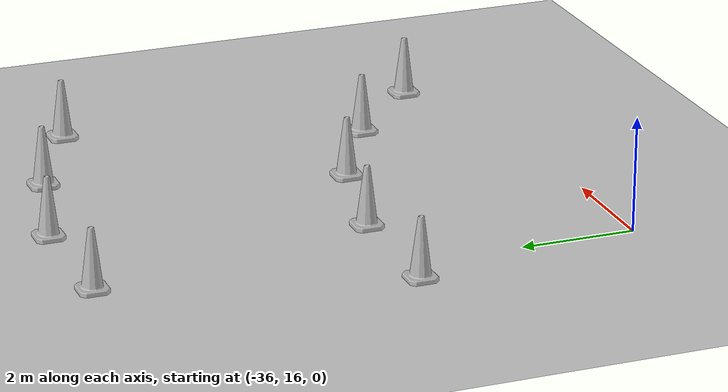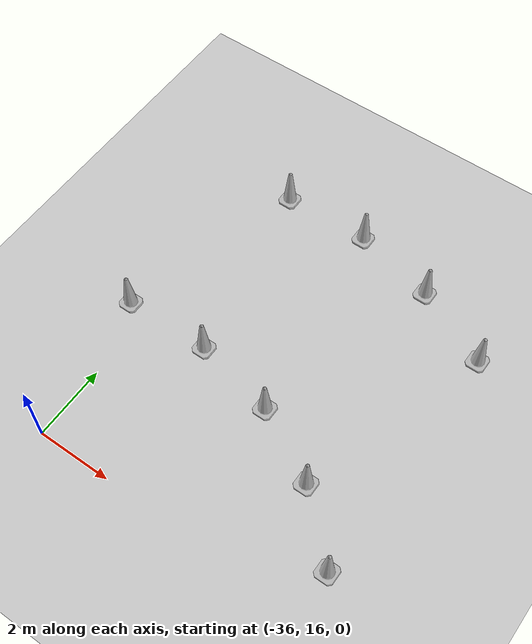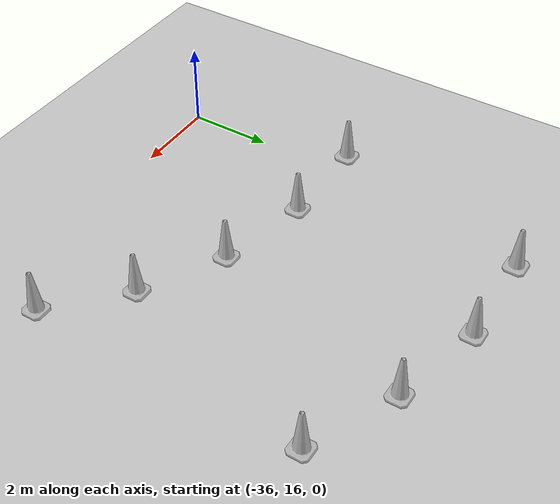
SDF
<sdf version="1.7">
 <world name="default">
  <model name="ground_plane">
   <static>1</static>
   <link name="link">
    <collision name="collision">
     <geometry><plane><normal>0 0 1</normal><size>125 125</size></plane></geometry>
     <surface>
      <contact><collide_bitmask>65535</collide_bitmask></contact>
      <friction><ode><mu>100</mu><mu2>50</mu2></ode></friction>
     </surface>
    </collision>
    <visual name="visual">
     <cast_shadows>0</cast_shadows>
     <geometry><plane><normal>0 0 1</normal><size>125 125</size></plane></geometry>
     <material>
      <script><uri>file://media/materials/scripts/gazebo.material</uri><name>Gazebo/Grey</name></script>
     </material>
    </visual>
   </link>
  </model>
  <model name="Construction Cone 62">
   <link name="link">
    <collision name="collision">
     <geometry>
      <mesh><scale>10 10 10</scale><uri>model://construction_cone/meshes/construction_cone.dae</uri></mesh>
     </geometry>
    </collision>
    <visual name="visual">
     <geometry>
      <mesh><scale>10 10 10</scale><uri>model://construction_cone/meshes/construction_cone.dae</uri></mesh>
     </geometry>
    </visual>
    <inertial>
     <inertia><ixx>1</ixx><ixy>0</ixy><ixz>0</ixz><iyy>1</iyy><iyz>0</iyz><izz>1</izz></inertia>
     <mass>1</mass>
    </inertial>
   </link>
   <pose>-35.19375161880874 25.080855827656052 0 0 0 0</pose>
  </model>
  <model name="Construction Cone 63">
   <link name="link">
    <collision name="collision">
     <geometry>
      <mesh><scale>10 10 10</scale><uri>model://construction_cone/meshes/construction_cone.dae</uri></mesh>
     </geometry>
    </collision>
    <visual name="visual">
     <geometry>
      <mesh><scale>10 10 10</scale><uri>model://construction_cone/meshes/construction_cone.dae</uri></mesh>
     </geometry>
    </visual>
    <inertial>
     <inertia><ixx>1</ixx><ixy>0</ixy><ixz>0</ixz><iyy>1</iyy><iyz>0</iyz><izz>1</izz></inertia>
     <mass>1</mass>
    </inertial>
   </link>
   <pose>-32.871751618808744 25.134855827656047 0 0 0 0</pose>
  </model>
  <model name="Construction Cone 65">
   <link name="link">
    <collision name="collision">
     <geometry>
      <mesh><scale>10 10 10</scale><uri>model://construction_cone/meshes/construction_cone.dae</uri></mesh>
     </geometry>
    </collision>
    <visual name="visual">
     <geometry>
      <mesh><scale>10 10 10</scale><uri>model://construction_cone/meshes/construction_cone.dae</uri></mesh>
     </geometry>
    </visual>
    <inertial>
     <inertia><ixx>1</ixx><ixy>0</ixy><ixz>0</ixz><iyy>1</iyy><iyz>0</iyz><izz>1</izz></inertia>
     <mass>1</mass>
    </inertial>
   </link>
   <pose>-30.657751618808742 24.594855827656048 0 0 0 0</pose>
  </model>
  <model name="Construction Cone 70">
   <link name="link">
    <collision name="collision">
     <geometry>
      <mesh><scale>10 10 10</scale><uri>model://construction_cone/meshes/construction_cone.dae</uri></mesh>
     </geometry>
    </collision>
    <visual name="visual">
     <geometry>
      <mesh><scale>10 10 10</scale><uri>model://construction_cone/meshes/construction_cone.dae</uri></mesh>
     </geometry>
    </visual>
    <inertial>
     <inertia><ixx>1</ixx><ixy>0</ixy><ixz>0</ixz><iyy>1</iyy><iyz>0</iyz><izz>1</izz></inertia>
     <mass>1</mass>
    </inertial>
   </link>
   <pose>-28.57875161880874 23.649855827656047 0 0 0 0</pose>
  </model>
  <model name="Construction Cone 84">
   <link name="link">
    <collision name="collision">
     <geometry>
      <mesh><scale>10 10 10</scale><uri>model://construction_cone/meshes/construction_cone.dae</uri></mesh>
     </geometry>
    </collision>
    <visual name="visual">
     <geometry>
      <mesh><scale>10 10 10</scale><uri>model://construction_cone/meshes/construction_cone.dae</uri></mesh>
     </geometry>
    </visual>
    <inertial>
     <inertia><ixx>1</ixx><ixy>0</ixy><ixz>0</ixz><iyy>1</iyy><iyz>0</iyz><izz>1</izz></inertia>
     <mass>1</mass>
    </inertial>
   </link>
   <pose>-36.59775161880874 20.04535582765605 0 0 0 0</pose>
  </model>
  <model name="Construction Cone 85">
   <link name="link">
    <collision name="collision">
     <geometry>
      <mesh><scale>10 10 10</scale><uri>model://construction_cone/meshes/construction_cone.dae</uri></mesh>
     </geometry>
    </collision>
    <visual name="visual">
     <geometry>
      <mesh><scale>10 10 10</scale><uri>model://construction_cone/meshes/construction_cone.dae</uri></mesh>
     </geometry>
    </visual>
    <inertial>
     <inertia><ixx>1</ixx><ixy>0</ixy><ixz>0</ixz><iyy>1</iyy><iyz>0</iyz><izz>1</izz></inertia>
     <mass>1</mass>
    </inertial>
   </link>
   <pose>-34.27575161880874 20.058855827656046 0 0 0 0</pose>
  </model>
  <model name="Construction Cone 88">
   <link name="link">
    <collision name="collision">
     <geometry>
      <mesh><scale>10 10 10</scale><uri>model://construction_cone/meshes/construction_cone.dae</uri></mesh>
     </geometry>
    </collision>
    <visual name="visual">
     <geometry>
      <mesh><scale>10 10 10</scale><uri>model://construction_cone/meshes/construction_cone.dae</uri></mesh>
     </geometry>
    </visual>
    <inertial>
     <inertia><ixx>1</ixx><ixy>0</ixy><ixz>0</ixz><iyy>1</iyy><iyz>0</iyz><izz>1</izz></inertia>
     <mass>1</mass>
    </inertial>
   </link>
   <pose>-32.07525161880874 19.57285582765605 0 0 0 0</pose>
  </model>
  <model name="Construction Cone 95">
   <link name="link">
    <collision name="collision">
     <geometry>
      <mesh><scale>10 10 10</scale><uri>model://construction_cone/meshes/construction_cone.dae</uri></mesh>
     </geometry>
    </collision>
    <visual name="visual">
     <geometry>
      <mesh><scale>10 10 10</scale><uri>model://construction_cone/meshes/construction_cone.dae</uri></mesh>
     </geometry>
    </visual>
    <inertial>
     <inertia><ixx>1</ixx><ixy>0</ixy><ixz>0</ixz><iyy>1</iyy><iyz>0</iyz><izz>1</izz></inertia>
     <mass>1</mass>
    </inertial>
   </link>
   <pose>-30.185251618808742 18.560355827656046 0 0 0 0</pose>
  </model>
  <model name="Construction Cone 102">
   <link name="link">
    <collision name="collision">
     <geometry>
      <mesh><scale>10 10 10</scale><uri>model://construction_cone/meshes/construction_cone.dae</uri></mesh>
     </geometry>
    </collision>
    <visual name="visual">
     <geometry>
      <mesh><scale>10 10 10</scale><uri>model://construction_cone/meshes/construction_cone.dae</uri></mesh>
     </geometry>
    </visual>
    <inertial>
     <inertia><ixx>1</ixx><ixy>0</ixy><ixz>0</ixz><iyy>1</iyy><iyz>0</iyz><izz>1</izz></inertia>
     <mass>1</mass>
    </inertial>
   </link>
   <pose>-28.63275161880874 17.12035582765605 0 0 0 0</pose>
  </model>
 </world>
</sdf>
